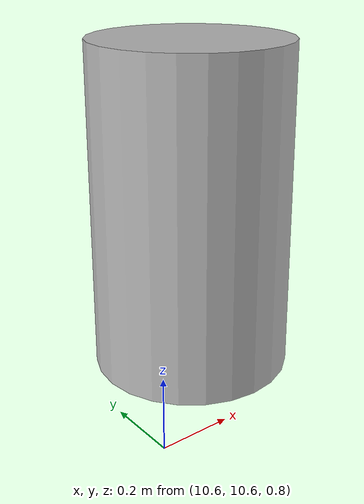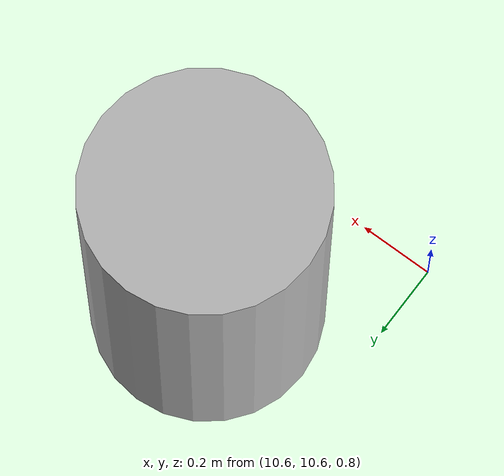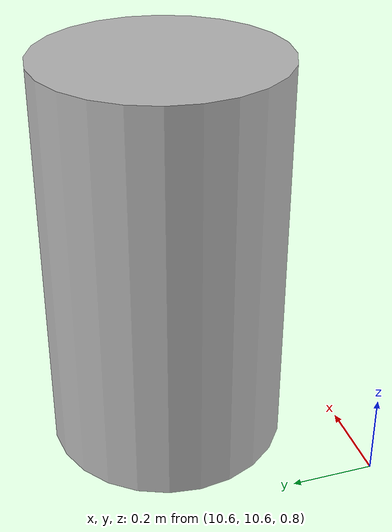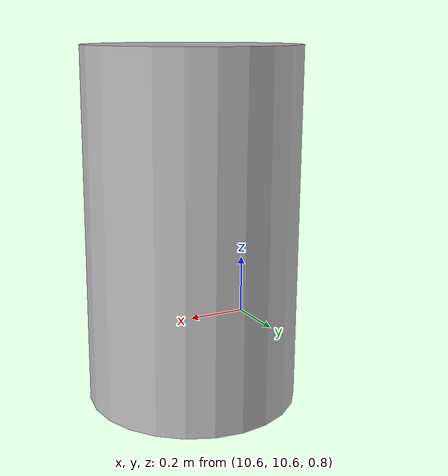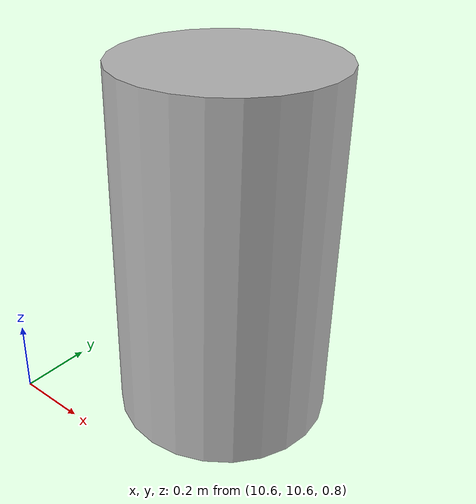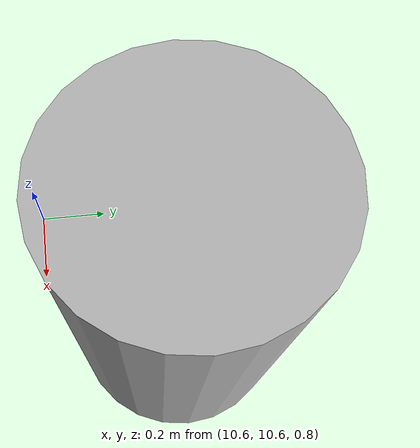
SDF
<?xml version="1.0"?>
<sdf version="1.6">
  <!-- An actor -->
  <model name="actor">
    <pose>11 11 1.25 0 0 0</pose>
    <link name="link_actor">
      <gravity>false</gravity>
      <collision name="collision_actor">
        <geometry>
          <cylinder>
            <length>1</length>
            <radius>0.3</radius>
          </cylinder>
        </geometry>
      </collision>
      <visual name="visual_actor">
        <geometry>
          <cylinder>
            <length>1</length>
            <radius>0.3</radius>
          </cylinder>
        </geometry>
      </visual>
    </link>
  </model>
</sdf>
